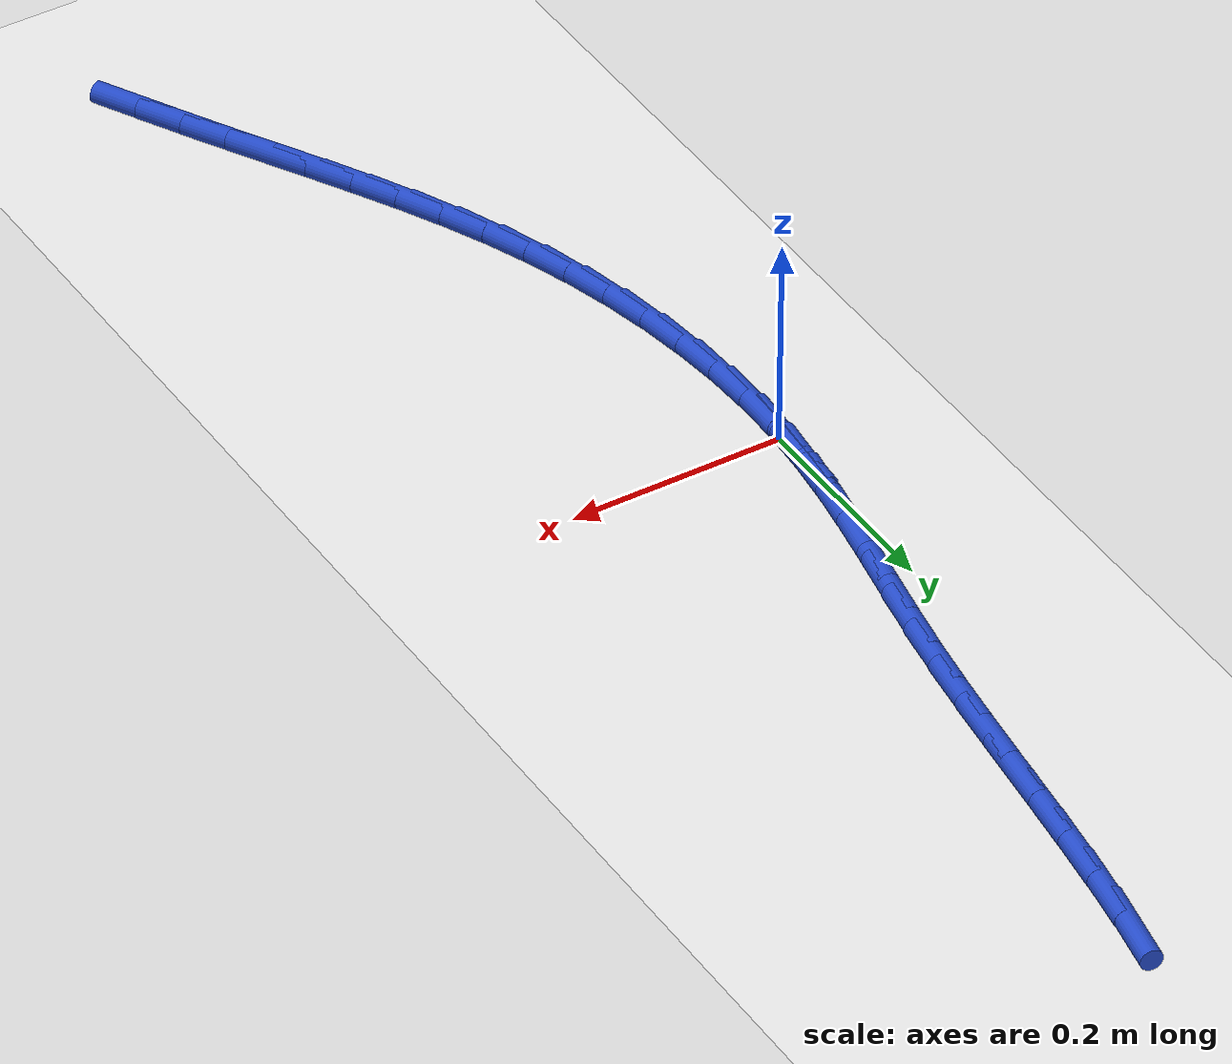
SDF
<sdf version="1.6">
 <world name="default">
  <model name="ground_plane">
   <static>1</static>
   <link name="link">
    <collision name="collision">
     <geometry><plane><normal>0 0 1</normal><size>100 100</size></plane></geometry>
     <surface><friction><ode><mu>100</mu><mu2>50</mu2></ode></friction></surface>
    </collision>
    <visual name="visual">
     <cast_shadows>0</cast_shadows>
     <geometry><plane><normal>0 0 1</normal><size>100 100</size></plane></geometry>
     <material>
      <script><uri>file://media/materials/scripts/gazebo.material</uri><name>Gazebo/WhiteGlow</name></script>
     </material>
    </visual>
   </link>
  </model>
  <model name="line">
   <link name="link_0">
    <pose>1.734723475976807e-18 -4.85722573273506e-17 0.01 0 1.57 1.4982520600714382</pose>
    <collision name="collision">
     <geometry><cylinder><radius>0.01</radius><length>0.08</length></cylinder></geometry>
    </collision>
    <visual name="visual">
     <material>
      <script><name>Gazebo/Blue</name><uri>file://media/materials/scripts/gazebo.material</uri></script>
     </material>
     <geometry><cylinder><radius>0.01</radius><length>0.08</length></cylinder></geometry>
    </visual>
   </link>
   <link name="link_1">
    <pose>0.0031635418248118262 0.04353190761836666 0.01 0 1.57 1.4481290351159648</pose>
    <collision name="collision">
     <geometry><cylinder><radius>0.01</radius><length>0.08</length></cylinder></geometry>
    </collision>
    <visual name="visual">
     <material>
      <script><name>Gazebo/Blue</name><uri>file://media/materials/scripts/gazebo.material</uri></script>
     </material>
     <geometry><cylinder><radius>0.01</radius><length>0.08</length></cylinder></geometry>
    </visual>
   </link>
   <link name="link_2">
    <pose>0.008481299447627183 0.08666531495928027 0.01 0 1.57 1.4110172237927368</pose>
    <collision name="collision">
     <geometry><cylinder><radius>0.01</radius><length>0.08</length></cylinder></geometry>
    </collision>
    <visual name="visual">
     <material>
      <script><name>Gazebo/Blue</name><uri>file://media/materials/scripts/gazebo.material</uri></script>
     </material>
     <geometry><cylinder><radius>0.01</radius><length>0.08</length></cylinder></geometry>
    </visual>
   </link>
   <link name="link_3">
    <pose>0.015428172090924824 0.12977267535093684 0.01 0 1.57 1.3875988910370318</pose>
    <collision name="collision">
     <geometry><cylinder><radius>0.01</radius><length>0.08</length></cylinder></geometry>
    </collision>
    <visual name="visual">
     <material>
      <script><name>Gazebo/Blue</name><uri>file://media/materials/scripts/gazebo.material</uri></script>
     </material>
     <geometry><cylinder><radius>0.01</radius><length>0.08</length></cylinder></geometry>
    </visual>
   </link>
   <link name="link_4">
    <pose>0.023479058977183512 0.17322644212153263 0.01 0 1.57 1.3778611131472942</pose>
    <collision name="collision">
     <geometry><cylinder><radius>0.01</radius><length>0.08</length></cylinder></geometry>
    </collision>
    <visual name="visual">
     <material>
      <script><name>Gazebo/Blue</name><uri>file://media/materials/scripts/gazebo.material</uri></script>
     </material>
     <geometry><cylinder><radius>0.01</radius><length>0.08</length></cylinder></geometry>
    </visual>
   </link>
   <link name="link_5">
    <pose>0.03210885932888199 0.2173990685992637 0.01 0 1.57 1.3812552790821984</pose>
    <collision name="collision">
     <geometry><cylinder><radius>0.01</radius><length>0.08</length></cylinder></geometry>
    </collision>
    <visual name="visual">
     <material>
      <script><name>Gazebo/Blue</name><uri>file://media/materials/scripts/gazebo.material</uri></script>
     </material>
     <geometry><cylinder><radius>0.01</radius><length>0.08</length></cylinder></geometry>
    </visual>
   </link>
   <link name="link_6">
    <pose>0.04079247236849904 0.26266300811232635 0.01 0 1.57 1.3968244775304373</pose>
    <collision name="collision">
     <geometry><cylinder><radius>0.01</radius><length>0.08</length></cylinder></geometry>
    </collision>
    <visual name="visual">
     <material>
      <script><name>Gazebo/Blue</name><uri>file://media/materials/scripts/gazebo.material</uri></script>
     </material>
     <geometry><cylinder><radius>0.01</radius><length>0.08</length></cylinder></geometry>
    </visual>
   </link>
   <link name="link_7">
    <pose>0.04900479738674748 0.3093907139218665 0.01 0 1.57 1.4199535878203715</pose>
    <collision name="collision">
     <geometry><cylinder><radius>0.01</radius><length>0.08</length></cylinder></geometry>
    </collision>
    <visual name="visual">
     <material>
      <script><name>Gazebo/Blue</name><uri>file://media/materials/scripts/gazebo.material</uri></script>
     </material>
     <geometry><cylinder><radius>0.01</radius><length>0.08</length></cylinder></geometry>
    </visual>
   </link>
   <link name="link_8">
    <pose>0.05636485738914827 0.3578130160995567 0.01 0 1.57 1.4372459033091183</pose>
    <collision name="collision">
     <geometry><cylinder><radius>0.01</radius><length>0.08</length></cylinder></geometry>
    </collision>
    <visual name="visual">
     <material>
      <script><name>Gazebo/Blue</name><uri>file://media/materials/scripts/gazebo.material</uri></script>
     </material>
     <geometry><cylinder><radius>0.01</radius><length>0.08</length></cylinder></geometry>
    </visual>
   </link>
   <link name="link_9">
    <pose>0.06305474474149994 0.4076074445276917 0.01 0 1.57 1.446428261008948</pose>
    <collision name="collision">
     <geometry><cylinder><radius>0.01</radius><length>0.08</length></cylinder></geometry>
    </collision>
    <visual name="visual">
     <material>
      <script><name>Gazebo/Blue</name><uri>file://media/materials/scripts/gazebo.material</uri></script>
     </material>
     <geometry><cylinder><radius>0.01</radius><length>0.08</length></cylinder></geometry>
    </visual>
   </link>
   <link name="link_10">
    <pose>0.06939404057874507 0.45831642572942244 0.01 0 1.57 1.4481247192318198</pose>
    <collision name="collision">
     <geometry><cylinder><radius>0.01</radius><length>0.08</length></cylinder></geometry>
    </collision>
    <visual name="visual">
     <material>
      <script><name>Gazebo/Blue</name><uri>file://media/materials/scripts/gazebo.material</uri></script>
     </material>
     <geometry><cylinder><radius>0.01</radius><length>0.08</length></cylinder></geometry>
    </visual>
   </link>
   <link name="link_11">
    <pose>0.07570232603582619 0.509482386227899 0.01 0 1.57 1.4425716549833085</pose>
    <collision name="collision">
     <geometry><cylinder><radius>0.01</radius><length>0.08</length></cylinder></geometry>
    </collision>
    <visual name="visual">
     <material>
      <script><name>Gazebo/Blue</name><uri>file://media/materials/scripts/gazebo.material</uri></script>
     </material>
     <geometry><cylinder><radius>0.01</radius><length>0.08</length></cylinder></geometry>
    </visual>
   </link>
   <link name="link_12">
    <pose>0.08229918224768584 0.5606477525462722 0.01 0 1.57 1.4296507228113342</pose>
    <collision name="collision">
     <geometry><cylinder><radius>0.01</radius><length>0.08</length></cylinder></geometry>
    </collision>
    <visual name="visual">
     <material>
      <script><name>Gazebo/Blue</name><uri>file://media/materials/scripts/gazebo.material</uri></script>
     </material>
     <geometry><cylinder><radius>0.01</radius><length>0.08</length></cylinder></geometry>
    </visual>
   </link>
   <link name="link_13">
    <pose>0.08950419034926657 0.6113549512076925 0.01 0 1.57 1.4088899671083515</pose>
    <collision name="collision">
     <geometry><cylinder><radius>0.01</radius><length>0.08</length></cylinder></geometry>
    </collision>
    <visual name="visual">
     <material>
      <script><name>Gazebo/Blue</name><uri>file://media/materials/scripts/gazebo.material</uri></script>
     </material>
     <geometry><cylinder><radius>0.01</radius><length>0.08</length></cylinder></geometry>
    </visual>
   </link>
   <link name="link_14">
    <pose>0.09763693147551093 0.6611464087353103 0.01 0 1.57 1.3794366495867223</pose>
    <collision name="collision">
     <geometry><cylinder><radius>0.01</radius><length>0.08</length></cylinder></geometry>
    </collision>
    <visual name="visual">
     <material>
      <script><name>Gazebo/Blue</name><uri>file://media/materials/scripts/gazebo.material</uri></script>
     </material>
     <geometry><cylinder><radius>0.01</radius><length>0.08</length></cylinder></geometry>
    </visual>
   </link>
   <link name="link_184">
    <pose>0.23475930958630564 -0.6685027108660678 0.01 0 1.57 -1.0784155293421627</pose>
    <collision name="collision">
     <geometry><cylinder><radius>0.01</radius><length>0.08</length></cylinder></geometry>
    </collision>
    <visual name="visual">
     <material>
      <script><name>Gazebo/Blue</name><uri>file://media/materials/scripts/gazebo.material</uri></script>
     </material>
     <geometry><cylinder><radius>0.01</radius><length>0.08</length></cylinder></geometry>
    </visual>
   </link>
   <link name="link_185">
    <pose>0.21317672927277895 -0.628270493537739 0.01 0 1.57 -1.0694347990710866</pose>
    <collision name="collision">
     <geometry><cylinder><radius>0.01</radius><length>0.08</length></cylinder></geometry>
    </collision>
    <visual name="visual">
     <material>
      <script><name>Gazebo/Blue</name><uri>file://media/materials/scripts/gazebo.material</uri></script>
     </material>
     <geometry><cylinder><radius>0.01</radius><length>0.08</length></cylinder></geometry>
    </visual>
   </link>
   <link name="link_186">
    <pose>0.19132909909100218 -0.5884077692399808 0.01 0 1.57 -1.0583944725555325</pose>
    <collision name="collision">
     <geometry><cylinder><radius>0.01</radius><length>0.08</length></cylinder></geometry>
    </collision>
    <visual name="visual">
     <material>
      <script><name>Gazebo/Blue</name><uri>file://media/materials/scripts/gazebo.material</uri></script>
     </material>
     <geometry><cylinder><radius>0.01</radius><length>0.08</length></cylinder></geometry>
    </visual>
   </link>
   <link name="link_187">
    <pose>0.16916046936205031 -0.5489980150412468 0.01 0 1.57 -1.0549268716824836</pose>
    <collision name="collision">
     <geometry><cylinder><radius>0.01</radius><length>0.08</length></cylinder></geometry>
    </collision>
    <visual name="visual">
     <material>
      <script><name>Gazebo/Blue</name><uri>file://media/materials/scripts/gazebo.material</uri></script>
     </material>
     <geometry><cylinder><radius>0.01</radius><length>0.08</length></cylinder></geometry>
    </visual>
   </link>
   <link name="link_188">
    <pose>0.1469645863106174 -0.5098580557609005 0.01 0 1.57 -1.0616955557105372</pose>
    <collision name="collision">
     <geometry><cylinder><radius>0.01</radius><length>0.08</length></cylinder></geometry>
    </collision>
    <visual name="visual">
     <material>
      <script><name>Gazebo/Blue</name><uri>file://media/materials/scripts/gazebo.material</uri></script>
     </material>
     <geometry><cylinder><radius>0.01</radius><length>0.08</length></cylinder></geometry>
    </visual>
   </link>
   <link name="link_189">
    <pose>0.12512683787072978 -0.47073483702426594 0.01 0 1.57 -1.078814202933569</pose>
    <collision name="collision">
     <geometry><cylinder><radius>0.01</radius><length>0.08</length></cylinder></geometry>
    </collision>
    <visual name="visual">
     <material>
      <script><name>Gazebo/Blue</name><uri>file://media/materials/scripts/gazebo.material</uri></script>
     </material>
     <geometry><cylinder><radius>0.01</radius><length>0.08</length></cylinder></geometry>
    </visual>
   </link>
   <link name="link_190">
    <pose>0.10403261231552281 -0.4313753041980878 0.01 0 1.57 -1.1063286829653625</pose>
    <collision name="collision">
     <geometry><cylinder><radius>0.01</radius><length>0.08</length></cylinder></geometry>
    </collision>
    <visual name="visual">
     <material>
      <script><name>Gazebo/Blue</name><uri>file://media/materials/scripts/gazebo.material</uri></script>
     </material>
     <geometry><cylinder><radius>0.01</radius><length>0.08</length></cylinder></geometry>
    </visual>
   </link>
   <link name="link_191">
    <pose>0.08406729791813183 -0.391526402649111 0.01 0 1.57 -1.1441604067086302</pose>
    <collision name="collision">
     <geometry><cylinder><radius>0.01</radius><length>0.08</length></cylinder></geometry>
    </collision>
    <visual name="visual">
     <material>
      <script><name>Gazebo/Blue</name><uri>file://media/materials/scripts/gazebo.material</uri></script>
     </material>
     <geometry><cylinder><radius>0.01</radius><length>0.08</length></cylinder></geometry>
    </visual>
   </link>
   <link name="link_192">
    <pose>0.06561628295169265 -0.3509350777440811 0.01 0 1.57 -1.192019848551106</pose>
    <collision name="collision">
     <geometry><cylinder><radius>0.01</radius><length>0.08</length></cylinder></geometry>
    </collision>
    <visual name="visual">
     <material>
      <script><name>Gazebo/Blue</name><uri>file://media/materials/scripts/gazebo.material</uri></script>
     </material>
     <geometry><cylinder><radius>0.01</radius><length>0.08</length></cylinder></geometry>
    </visual>
   </link>
   <link name="link_193">
    <pose>0.04906495568933977 -0.309348274849741 0.01 0 1.57 -1.2475549499053595</pose>
    <collision name="collision">
     <geometry><cylinder><radius>0.01</radius><length>0.08</length></cylinder></geometry>
    </collision>
    <visual name="visual">
     <material>
      <script><name>Gazebo/Blue</name><uri>file://media/materials/scripts/gazebo.material</uri></script>
     </material>
     <geometry><cylinder><radius>0.01</radius><length>0.08</length></cylinder></geometry>
    </visual>
   </link>
   <link name="link_194">
    <pose>0.03474508184336751 -0.2666011868203248 0.01 0 1.57 -1.3033705166120595</pose>
    <collision name="collision">
     <geometry><cylinder><radius>0.01</radius><length>0.08</length></cylinder></geometry>
    </collision>
    <visual name="visual">
     <material>
      <script><name>Gazebo/Blue</name><uri>file://media/materials/scripts/gazebo.material</uri></script>
     </material>
     <geometry><cylinder><radius>0.01</radius><length>0.08</length></cylinder></geometry>
    </visual>
   </link>
   <link name="link_195">
    <pose>0.022768822126931033 -0.2228904138936351 0.01 0 1.57 -1.3582914538660649</pose>
    <collision name="collision">
     <geometry><cylinder><radius>0.01</radius><length>0.08</length></cylinder></geometry>
    </collision>
    <visual name="visual">
     <material>
      <script><name>Gazebo/Blue</name><uri>file://media/materials/scripts/gazebo.material</uri></script>
     </material>
     <geometry><cylinder><radius>0.01</radius><length>0.08</length></cylinder></geometry>
    </visual>
   </link>
   <link name="link_196">
    <pose>0.013192126969872028 -0.17850506245032866 0.01 0 1.57 -1.4130591949591562</pose>
    <collision name="collision">
     <geometry><cylinder><radius>0.01</radius><length>0.08</length></cylinder></geometry>
    </collision>
    <visual name="visual">
     <material>
      <script><name>Gazebo/Blue</name><uri>file://media/materials/scripts/gazebo.material</uri></script>
     </material>
     <geometry><cylinder><radius>0.01</radius><length>0.08</length></cylinder></geometry>
    </visual>
   </link>
   <link name="link_197">
    <pose>0.006070946775419966 -0.1337342389148587 0.01 0 1.57 -1.4684142263153053</pose>
    <collision name="collision">
     <geometry><cylinder><radius>0.01</radius><length>0.08</length></cylinder></geometry>
    </collision>
    <visual name="visual">
     <material>
      <script><name>Gazebo/Blue</name><uri>file://media/materials/scripts/gazebo.material</uri></script>
     </material>
     <geometry><cylinder><radius>0.01</radius><length>0.08</length></cylinder></geometry>
    </visual>
   </link>
   <link name="link_198">
    <pose>0.0014612319468042963 -0.08886704971167847 0.01 0 1.57 -1.5251129844062528</pose>
    <collision name="collision">
     <geometry><cylinder><radius>0.01</radius><length>0.08</length></cylinder></geometry>
    </collision>
    <visual name="visual">
     <material>
      <script><name>Gazebo/Blue</name><uri>file://media/materials/scripts/gazebo.material</uri></script>
     </material>
     <geometry><cylinder><radius>0.01</radius><length>0.08</length></cylinder></geometry>
    </visual>
   </link>
   <link name="link_199">
    <pose>-0.0005810671127455137 -0.04419260126524113 0.01 0 1.57 1.5576485687098018</pose>
    <collision name="collision">
     <geometry><cylinder><radius>0.01</radius><length>0.08</length></cylinder></geometry>
    </collision>
    <visual name="visual">
     <material>
      <script><name>Gazebo/Blue</name><uri>file://media/materials/scripts/gazebo.material</uri></script>
     </material>
     <geometry><cylinder><radius>0.01</radius><length>0.08</length></cylinder></geometry>
    </visual>
   </link>
   <link name="link_200">
    <pose>-1.734723475976807e-18 6.938893903907228e-17 0.01 0 1.57 1.4958503686412536</pose>
    <collision name="collision">
     <geometry><cylinder><radius>0.01</radius><length>0.08</length></cylinder></geometry>
    </collision>
    <visual name="visual">
     <material>
      <script><name>Gazebo/Blue</name><uri>file://media/materials/scripts/gazebo.material</uri></script>
     </material>
     <geometry><cylinder><radius>0.01</radius><length>0.08</length></cylinder></geometry>
    </visual>
   </link>
   <link name="link_201">
    <pose>0.0032603836882703838 0.04342164765959289 0.01 0 1.57 1.4958503686412539</pose>
    <collision name="collision">
     <geometry><cylinder><radius>0.01</radius><length>0.08</length></cylinder></geometry>
    </collision>
    <visual name="visual">
     <material>
      <script><name>Gazebo/Blue</name><uri>file://media/materials/scripts/gazebo.material</uri></script>
     </material>
     <geometry><cylinder><radius>0.01</radius><length>0.08</length></cylinder></geometry>
    </visual>
   </link>
  </model>
 </world>
</sdf>
